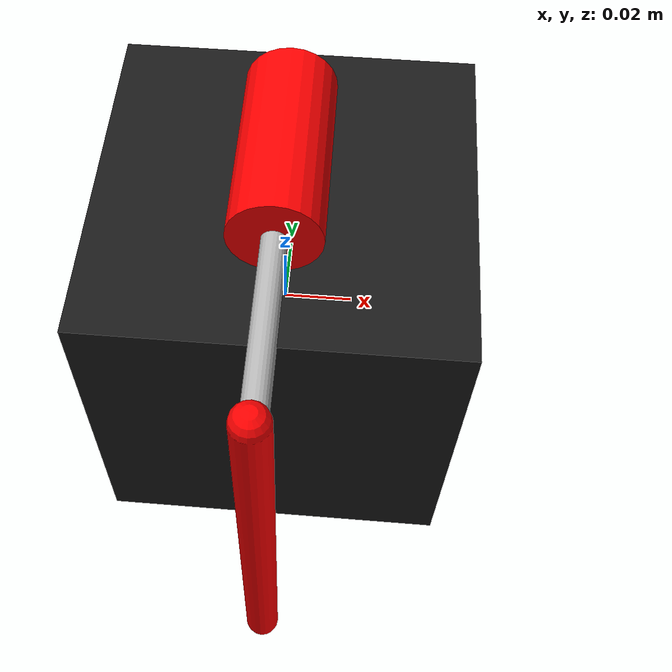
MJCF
<mujoco model="cartpole">
	<compiler coordinate="local" inertiafromgeom="true"/>
	<custom>
		<numeric data="2" name="frame_skip"/>
	</custom>
	<default>
		<joint damping="0.0005"/>
	</default>
	<asset>
		<texture type="skybox" builtin="gradient" width="100" height="100" rgb1="0.5 0.5 0.5" />
	</asset>
	<option gravity="0 0 -9.81" integrator="RK4" timestep="0.001"/>
	<size nstack="3000"/>
	<worldbody>

		<!-- Assume pendulum is x,y,z = 0.102m, 0.102m, 0.101m; should add textures -->
		<!-- Note all of these are halved -->
		<geom name="qube_base" pos="0 0 0" rgba="0.1 0.1 0.1 1" size=".051 .051 .0505" type="box"/>

		<!-- This is the part that spins - position it 0.102+ 1/2 * height of disk -->
		<body name="rotary_pen" pos="0 0 0.05475">
			<!-- Range of the rotation is from the stops (-120deg to +120deg) -->
			<joint axis="0 0 1" name="rotary_top_hinge" range="-120 120" limited="true" damping="0.0005" type="hinge"/>

			<!-- The part that spins - position is right on top of the qube -->
			<geom name="rotary_top" rgba="0.7 0.7 0.7 1" size="0.0111 0.00375" mass="0.0106" type="cylinder"/>

			<!-- pos x=0, y=0, z=mid of hub to mid of rotary top; mass is approximated ~= 0.0876... rotation = facing to front - FIND THE CORRECT QUATERNION!!! -->
			<geom name="rotary_arm_hub" rgba="1 0 0 1" pos="0 -0.006 0.013" size="0.012 0.026" quat="0 0 0.707 0.707" mass="0.0875" type="cylinder"/>

			<body name="pendulum_and_arm_body" pos="0 0 0.013">
				<geom fromto="0 0 0 0 -0.085 0" name="arm" rgba="0.7 0.7 0.7 1" size="0.00325 0.085" mass="0.0075" type="cylinder"/>

				<body name="pendulum_body" pos="0 -0.085 0">
					<joint axis="0 1 0" name="arm_pendulum_hinge" pos="0 0 0" damping="0.00005" type="hinge"/>
					<!-- The pendulum of the qube, is Lp = 0.129m, 0.008m above the centre of the joint and 0.121m below the centre of the joint, radius = 0.0475, mp = 0.024kg, and moment of inertia of Jr = 0.000033282 -->
					<geom fromto="0 0 0.008 0 0 -0.121" name="pendulum" rgba="1 0 0 1" size="0.00475 0.129" mass="0.024" type="capsule"/>
				</body>
			</body>
		</body>

	</worldbody>
	<actuator>
		<!-- Action range is between -3 and 3 (but should this be the voltage range??) - removed because this is limited in the other code... -->
		<!-- Gear is 0.005 is proportional to tau = (km * (Vm - km * theta_dot)) / Rm ~= (km/Rm) * Vm. Gear = km/rm = 0.042/8.4 = 0.005 -->
		<motor gear="0.005" joint="rotary_top_hinge" name="slide"/>
	</actuator>
</mujoco>
